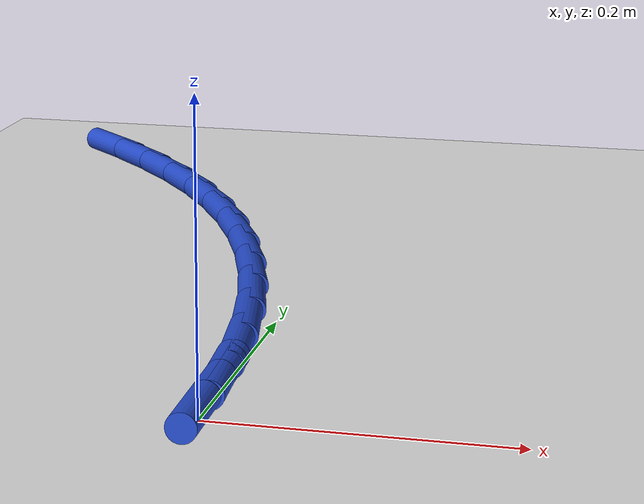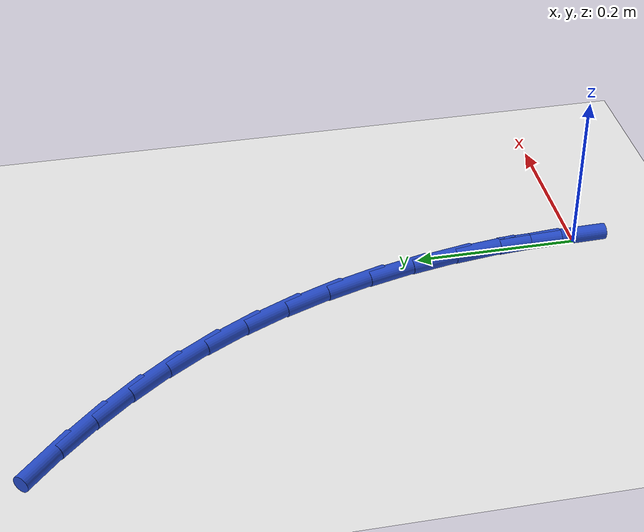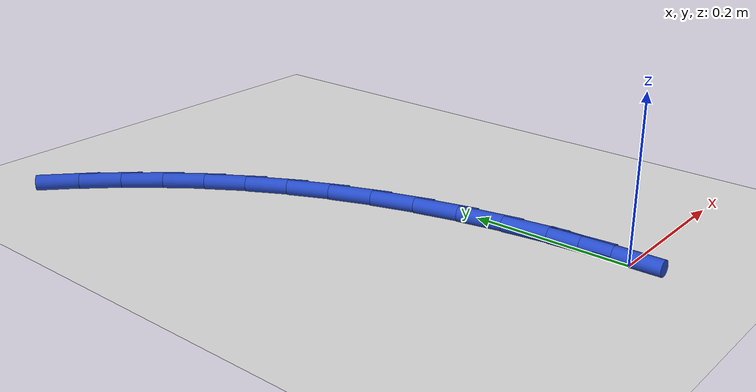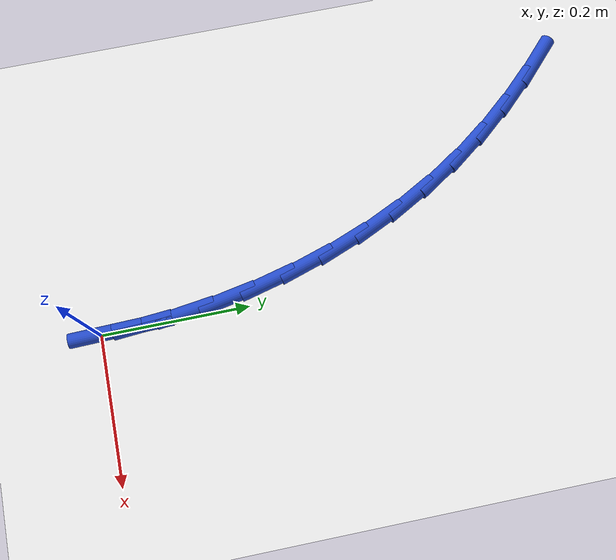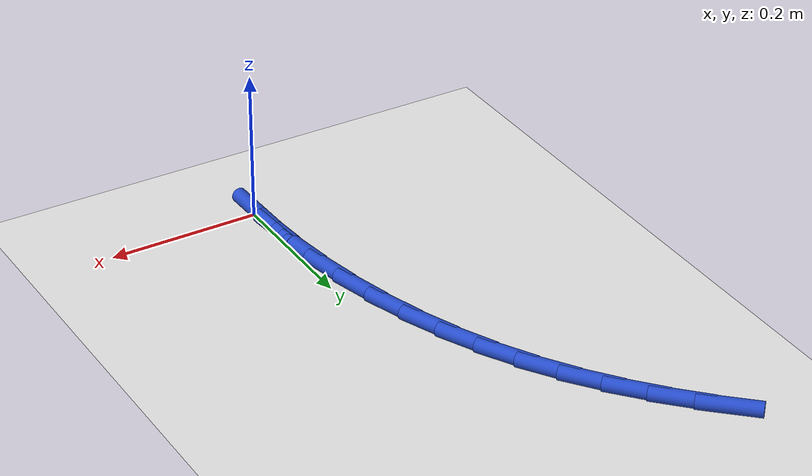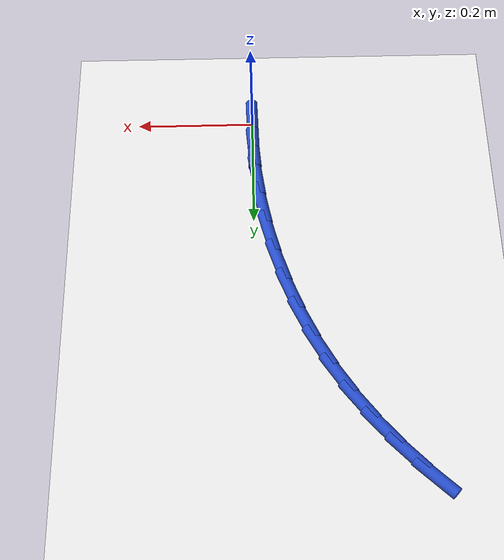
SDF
<sdf version="1.6">
 <world name="default">
  <model name="ground_plane">
   <static>1</static>
   <link name="link">
    <collision name="collision">
     <geometry><plane><normal>0 0 1</normal><size>100 100</size></plane></geometry>
     <surface><friction><ode><mu>100</mu><mu2>50</mu2></ode></friction></surface>
    </collision>
    <visual name="visual">
     <cast_shadows>0</cast_shadows>
     <geometry><plane><normal>0 0 1</normal><size>100 100</size></plane></geometry>
     <material>
      <script><uri>file://media/materials/scripts/gazebo.material</uri><name>Gazebo/WhiteGlow</name></script>
     </material>
    </visual>
   </link>
  </model>
  <model name="line">
   <link name="link_0">
    <pose>7.45931094670027e-17 8.326672684688674e-17 0.01 0 1.57 -1.5450880430336444</pose>
    <collision name="collision">
     <geometry><cylinder><radius>0.01</radius><length>0.08</length></cylinder></geometry>
    </collision>
    <visual name="visual">
     <material>
      <script><name>Gazebo/Blue</name><uri>file://media/materials/scripts/gazebo.material</uri></script>
     </material>
     <geometry><cylinder><radius>0.01</radius><length>0.08</length></cylinder></geometry>
    </visual>
   </link>
   <link name="link_1">
    <pose>-0.001494854136302509 0.05813397780282218 0.01 0 1.57 -1.4897575189232113</pose>
    <collision name="collision">
     <geometry><cylinder><radius>0.01</radius><length>0.08</length></cylinder></geometry>
    </collision>
    <visual name="visual">
     <material>
      <script><name>Gazebo/Blue</name><uri>file://media/materials/scripts/gazebo.material</uri></script>
     </material>
     <geometry><cylinder><radius>0.01</radius><length>0.08</length></cylinder></geometry>
    </visual>
   </link>
   <link name="link_2">
    <pose>-0.006197410382924533 0.11603534027721317 0.01 0 1.57 -1.4339529669549456</pose>
    <collision name="collision">
     <geometry><cylinder><radius>0.01</radius><length>0.08</length></cylinder></geometry>
    </collision>
    <visual name="visual">
     <material>
      <script><name>Gazebo/Blue</name><uri>file://media/materials/scripts/gazebo.material</uri></script>
     </material>
     <geometry><cylinder><radius>0.01</radius><length>0.08</length></cylinder></geometry>
    </visual>
   </link>
   <link name="link_3">
    <pose>-0.014098947951773716 0.17341594113415834 0.01 0 1.57 -1.377186091408519</pose>
    <collision name="collision">
     <geometry><cylinder><radius>0.01</radius><length>0.08</length></cylinder></geometry>
    </collision>
    <visual name="visual">
     <material>
      <script><name>Gazebo/Blue</name><uri>file://media/materials/scripts/gazebo.material</uri></script>
     </material>
     <geometry><cylinder><radius>0.01</radius><length>0.08</length></cylinder></geometry>
    </visual>
   </link>
   <link name="link_4">
    <pose>-0.02519074605475775 0.22998763408464284 0.01 0 1.57 -1.318963811269029</pose>
    <collision name="collision">
     <geometry><cylinder><radius>0.01</radius><length>0.08</length></cylinder></geometry>
    </collision>
    <visual name="visual">
     <material>
      <script><name>Gazebo/Blue</name><uri>file://media/materials/scripts/gazebo.material</uri></script>
     </material>
     <geometry><cylinder><radius>0.01</radius><length>0.08</length></cylinder></geometry>
    </visual>
   </link>
   <link name="link_5">
    <pose>-0.03946408390378437 0.2854622728396521 0.01 0 1.57 -1.2587885183897392</pose>
    <collision name="collision">
     <geometry><cylinder><radius>0.01</radius><length>0.08</length></cylinder></geometry>
    </collision>
    <visual name="visual">
     <material>
      <script><name>Gazebo/Blue</name><uri>file://media/materials/scripts/gazebo.material</uri></script>
     </material>
     <geometry><cylinder><radius>0.01</radius><length>0.08</length></cylinder></geometry>
    </visual>
   </link>
   <link name="link_6">
    <pose>-0.056910240710761284 0.33955171111017113 0.01 0 1.57 -1.1961616343601156</pose>
    <collision name="collision">
     <geometry><cylinder><radius>0.01</radius><length>0.08</length></cylinder></geometry>
    </collision>
    <visual name="visual">
     <material>
      <script><name>Gazebo/Blue</name><uri>file://media/materials/scripts/gazebo.material</uri></script>
     </material>
     <geometry><cylinder><radius>0.01</radius><length>0.08</length></cylinder></geometry>
    </visual>
   </link>
   <link name="link_7">
    <pose>-0.07752049568759617 0.39196780260718517 0.01 0 1.57 -1.1305920877929059</pose>
    <collision name="collision">
     <geometry><cylinder><radius>0.01</radius><length>0.08</length></cylinder></geometry>
    </collision>
    <visual name="visual">
     <material>
      <script><name>Gazebo/Blue</name><uri>file://media/materials/scripts/gazebo.material</uri></script>
     </material>
     <geometry><cylinder><radius>0.01</radius><length>0.08</length></cylinder></geometry>
    </visual>
   </link>
   <link name="link_8">
    <pose>-0.10128612804619677 0.4424224010416797 0.01 0 1.57 -1.0616116317645803</pose>
    <collision name="collision">
     <geometry><cylinder><radius>0.01</radius><length>0.08</length></cylinder></geometry>
    </collision>
    <visual name="visual">
     <material>
      <script><name>Gazebo/Blue</name><uri>file://media/materials/scripts/gazebo.material</uri></script>
     </material>
     <geometry><cylinder><radius>0.01</radius><length>0.08</length></cylinder></geometry>
    </visual>
   </link>
   <link name="link_9">
    <pose>-0.12819841699847082 0.4906273601246398 0.01 0 1.57 -0.9895710148719649</pose>
    <collision name="collision">
     <geometry><cylinder><radius>0.01</radius><length>0.08</length></cylinder></geometry>
    </collision>
    <visual name="visual">
     <material>
      <script><name>Gazebo/Blue</name><uri>file://media/materials/scripts/gazebo.material</uri></script>
     </material>
     <geometry><cylinder><radius>0.01</radius><length>0.08</length></cylinder></geometry>
    </visual>
   </link>
   <link name="link_10">
    <pose>-0.1582295840851085 0.5363423870673149 0.01 0 1.57 -0.9202911558064131</pose>
    <collision name="collision">
     <geometry><cylinder><radius>0.01</radius><length>0.08</length></cylinder></geometry>
    </collision>
    <visual name="visual">
     <material>
      <script><name>Gazebo/Blue</name><uri>file://media/materials/scripts/gazebo.material</uri></script>
     </material>
     <geometry><cylinder><radius>0.01</radius><length>0.08</length></cylinder></geometry>
    </visual>
   </link>
   <link name="link_11">
    <pose>-0.19121074005758307 0.5796815159612982 0.01 0 1.57 -0.8572494358444194</pose>
    <collision name="collision">
     <geometry><cylinder><radius>0.01</radius><length>0.08</length></cylinder></geometry>
    </collision>
    <visual name="visual">
     <material>
      <script><name>Gazebo/Blue</name><uri>file://media/materials/scripts/gazebo.material</uri></script>
     </material>
     <geometry><cylinder><radius>0.01</radius><length>0.08</length></cylinder></geometry>
    </visual>
   </link>
   <link name="link_12">
    <pose>-0.22690964645692746 0.620917849727945 0.01 0 1.57 -0.8011625001444458</pose>
    <collision name="collision">
     <geometry><cylinder><radius>0.01</radius><length>0.08</length></cylinder></geometry>
    </collision>
    <visual name="visual">
     <material>
      <script><name>Gazebo/Blue</name><uri>file://media/materials/scripts/gazebo.material</uri></script>
     </material>
     <geometry><cylinder><radius>0.01</radius><length>0.08</length></cylinder></geometry>
    </visual>
   </link>
   <link name="link_13">
    <pose>-0.26509376379453065 0.6603252471691141 0.01 0 1.57 -0.7523982903711222</pose>
    <collision name="collision">
     <geometry><cylinder><radius>0.01</radius><length>0.08</length></cylinder></geometry>
    </collision>
    <visual name="visual">
     <material>
      <script><name>Gazebo/Blue</name><uri>file://media/materials/scripts/gazebo.material</uri></script>
     </material>
     <geometry><cylinder><radius>0.01</radius><length>0.08</length></cylinder></geometry>
    </visual>
   </link>
   <link name="link_121">
    <pose>-0.0015004049630013387 0.05814001339616576 0.01 0 1.57 -1.5449953005435733</pose>
    <collision name="collision">
     <geometry><cylinder><radius>0.01</radius><length>0.08</length></cylinder></geometry>
    </collision>
    <visual name="visual">
     <material>
      <script><name>Gazebo/Blue</name><uri>file://media/materials/scripts/gazebo.material</uri></script>
     </material>
     <geometry><cylinder><radius>0.01</radius><length>0.08</length></cylinder></geometry>
    </visual>
   </link>
  </model>
 </world>
</sdf>
